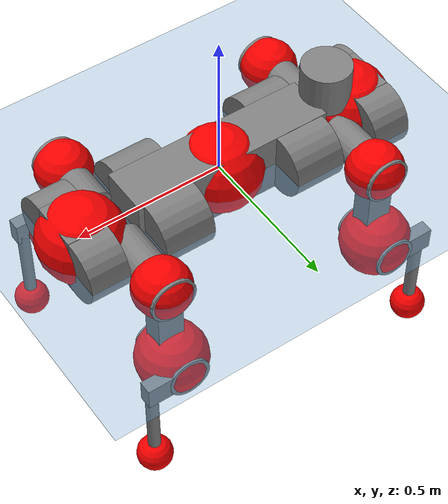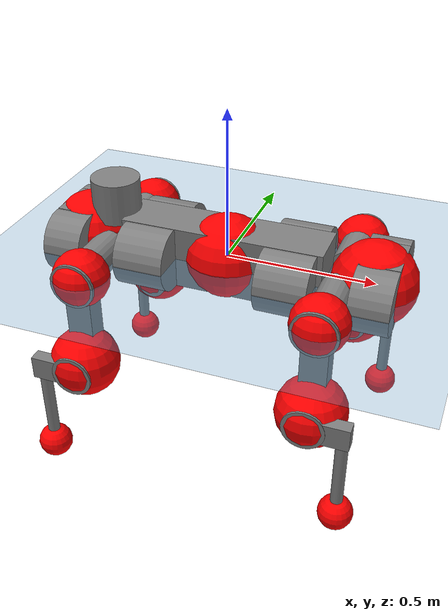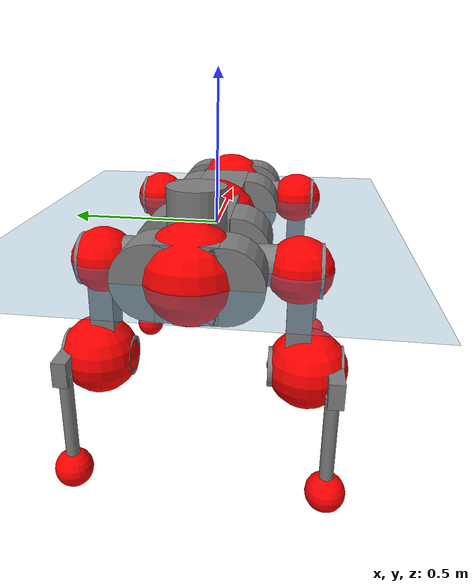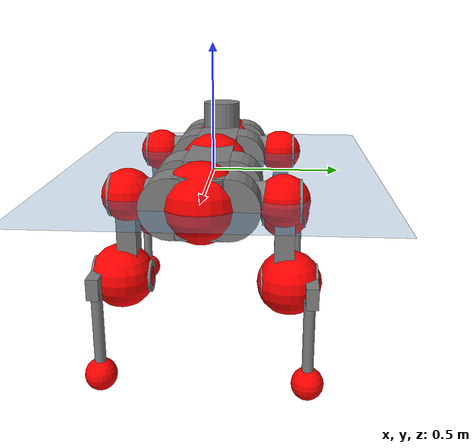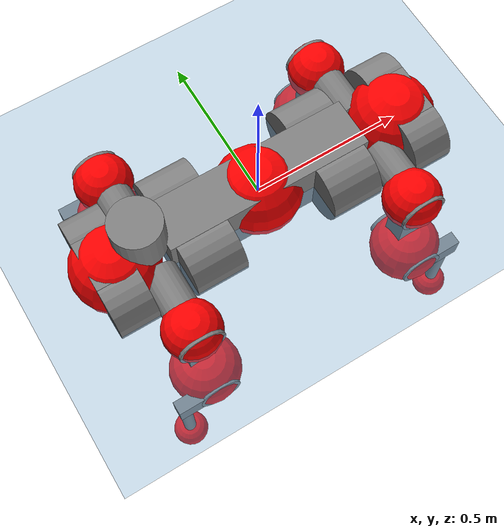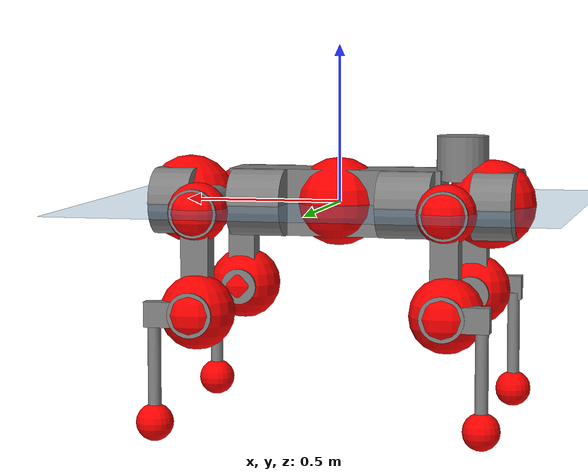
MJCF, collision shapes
<mujoco model="anymal_c">
  <compiler angle="radian" assetdir="assets" balanceinertia="true" inertiafromgeom="false"/>

  <option timestep="0.005" density="1.2" viscosity="2e-05"/>

  <size nkey="1"/>

  <visual>
    <quality shadowsize="8192"/>
    <map shadowclip="0.5"/>
  </visual>

  <default>
    <default class="/">
      <material specular="0" shininess="0.25"/>
      <geom contype="0" conaffinity="0" group="1" solref="-1000 -80"/>
      <site size="0.01 0.005 0.005" group="5"/>
      <general forcelimited="true" forcerange="-80 80" biastype="affine" gainprm="80" biasprm="0 -80 -2"/>
      <default class="anymal_c">
        <joint armature="0.01" damping="0.01" frictionloss="0.1"/>
        <default class="visual">
          <geom type="mesh" group="2"/>
          <default class="visual_zflip"/>
        </default>
        <default class="collision">
          <geom type="cylinder" group="3"/>
          <default class="foot">
            <geom size="0.03 0 0" type="sphere" condim="6" priority="1" friction="0.8 0.02 0.01" solimp="0.015 1 0.03"/>
          </default>
        </default>
      </default>
      <default class="reward_collision_sphere">
        <geom group="5" rgba="1 0 0 1"/>
      </default>
    </default>
  </default>

  <asset>
    <texture type="skybox" colorspace="auto" name="//unnamed_texture_0" builtin="gradient" rgb1="0.95 0.95 0.95" rgb2="0.95 0.95 0.95" width="100" height="600"/>
    <texture type="2d" colorspace="auto" name="texplane" builtin="checker" rgb1="0.345 0.575 0.748" rgb2="0.345 0.575 0.748" markrgb="1 1 1" width="512" height="512"/>
    <texture type="2d" colorspace="linear" name="base" file="base.png"/>
    <texture type="2d" colorspace="linear" name="top_shell" file="top_shell.png"/>
    <texture type="2d" colorspace="linear" name="bottom_shell" file="bottom_shell.png"/>
    <texture type="2d" colorspace="linear" name="remote" file="remote.png"/>
    <texture type="2d" colorspace="linear" name="hatch" file="hatch.png"/>
    <texture type="2d" colorspace="linear" name="handle" file="handle.png"/>
    <texture type="2d" colorspace="linear" name="face" file="face.png"/>
    <texture type="2d" colorspace="linear" name="battery" file="battery.png"/>
    <texture type="2d" colorspace="linear" name="lidar_cage" file="lidar_cage.png"/>
    <texture type="2d" colorspace="linear" name="depth_camera" file="depth_camera.png"/>
    <texture type="2d" colorspace="linear" name="wide_angle_camera" file="wide_angle_camera.png"/>
    <texture type="2d" colorspace="linear" name="lidar" file="lidar.png"/>
    <texture type="2d" colorspace="linear" name="drive" file="drive.png"/>
    <texture type="2d" colorspace="linear" name="hip_l" file="hip_l.png"/>
    <texture type="2d" colorspace="linear" name="shank_l" file="shank_l.png"/>
    <texture type="2d" colorspace="linear" name="foot" file="foot.png"/>
    <texture type="2d" colorspace="linear" name="thigh" file="thigh.png"/>
    <texture type="2d" colorspace="linear" name="shank_r" file="shank_r.png"/>
    <texture type="2d" colorspace="linear" name="hip_r" file="hip_r.png"/>
    <material name="MatPlane" class="/" texture="texplane" texuniform="true" texrepeat="2 2" specular="0.9" shininess="0.5"/>
    <material name="black_plastic" class="/" rgba="0.007 0.007 0.007 1"/>
    <material name="green" class="/" rgba="0.052 0.178 0.033 1"/>
    <material name="red" class="/" rgba="0.178 0.006 0.005 1"/>
    <material name="yellow" class="/" rgba="0.178 0.119 0.006 1"/>
    <material name="lwl" class="/" rgba="0.8 0.8 0.8 1"/>
    <material name="base" class="/" texture="base"/>
    <material name="top_shell" class="/" texture="top_shell"/>
    <material name="bottom_shell" class="/" texture="bottom_shell"/>
    <material name="hip_l" class="/" texture="hip_l"/>
    <material name="thigh" class="/" texture="thigh"/>
    <material name="shank_l" class="/" texture="shank_l"/>
    <material name="foot" class="/" texture="foot"/>
    <material name="hip_r" class="/" texture="hip_r"/>
    <material name="shank" class="/" texture="shank_r"/>
    <material name="hatch" class="/" texture="hatch"/>
    <material name="remote" class="/" texture="remote"/>
    <material name="handle" class="/" texture="handle"/>
    <material name="face" class="/" texture="face"/>
    <material name="depth_camera" class="/" texture="depth_camera"/>
    <material name="wide_angle_camera" class="/" texture="wide_angle_camera"/>
    <material name="battery" class="/" texture="battery"/>
    <material name="lidar_cage" class="/" texture="lidar_cage"/>
    <material name="lidar" class="/" texture="lidar"/>
    <material name="drive" class="/" texture="drive"/>
    <mesh name="base_0" class="/" file="base_0.obj"/>
    <mesh name="base_1" class="/" file="base_1.obj"/>
    <mesh name="base_2" class="/" file="base_2.obj"/>
    <mesh name="base_3" class="/" file="base_3.obj"/>
    <mesh name="base_4" class="/" file="base_4.obj"/>
    <mesh name="base_5" class="/" file="base_5.obj"/>
    <mesh name="top_shell" class="/" file="top_shell.obj"/>
    <mesh name="bottom_shell" class="/" file="bottom_shell.obj"/>
    <mesh name="remote" class="/" file="remote.obj"/>
    <mesh name="handle" class="/" file="handle.obj"/>
    <mesh name="face" class="/" file="face.obj"/>
    <mesh name="wide_angle_camera" class="/" file="wide_angle_camera.obj"/>
    <mesh name="depth_camera" class="/" file="depth_camera.obj"/>
    <mesh name="battery" class="/" file="battery.obj"/>
    <mesh name="lidar_cage" class="/" file="lidar_cage.obj"/>
    <mesh name="lidar" class="/" file="lidar.obj"/>
    <mesh name="drive" class="/" file="drive.obj"/>
    <mesh name="hip_l" class="/" file="hip_l.obj"/>
    <mesh name="thigh" class="/" file="thigh.obj"/>
    <mesh name="shank_l" class="/" file="shank_l.obj"/>
    <mesh name="foot" class="/" file="foot.obj"/>
    <mesh name="hip_r" class="/" file="hip_r.obj"/>
    <mesh name="hatch" class="/" file="hatch.obj"/>
    <mesh name="shank_r" class="/" file="shank_r.obj"/>
  </asset>

  <worldbody>
    <geom name="floor" class="/" size="100 100 0.125" type="plane" group="0" material="MatPlane"/>
    <light name="toplight_shadow" class="/" pos="0 0 5" dir="0.0990148 0.0990148 -0.990148" type="directional" ambient="0.04 0.04 0.04" diffuse="0.55 0.55 0.55" specular="0.12 0.12 0.12"/>
    <light name="toplight_fill" class="/" pos="0 0 5" dir="0.0990148 0.0990148 -0.990148" type="directional" castshadow="false" ambient="0.04 0.04 0.04" diffuse="0.3 0.3 0.3" specular="0.08 0.08 0.08"/>
    <body name="trunk" childclass="anymal_c" pos="0.000540918 0.0035917 0.00204004" quat="1 8.00715e-06 -4.95742e-06 3.56093e-06">
      <inertial pos="0.00402978 0.00430276 0.0496236" quat="0.52037 0.516264 0.471022 0.490739" mass="31.7695" diaginertia="1.00057 2.77491 0.317088"/>
      <joint name="//unnamed_joint_0" type="free" armature="0" damping="0" frictionloss="0"/>
      <geom name="//unnamed_geom_1" class="visual" material="green" mesh="base_0"/>
      <geom name="//unnamed_geom_2" class="visual" material="yellow" mesh="base_1"/>
      <geom name="//unnamed_geom_3" class="visual" material="red" mesh="base_2"/>
      <geom name="//unnamed_geom_4" class="visual" material="black_plastic" mesh="base_3"/>
      <geom name="//unnamed_geom_5" class="visual" material="lwl" mesh="base_4"/>
      <geom name="//unnamed_geom_6" class="visual" material="base" mesh="base_5"/>
      <geom name="trunk_1" class="collision" size="0.341105 0.0823357 0.10586" type="box"/>
      <geom name="trunk_2" class="collision" size="0.10586 0.0852763" pos="0.237775 0.0951048 0" quat="0.707107 0 0.707107 0"/>
      <geom name="trunk_3" class="collision" size="0.10586 0.0852763" pos="-0.237775 0.0951048 0" quat="0.707107 0 0.707107 0"/>
      <geom name="trunk_4" class="collision" size="0.10586 0.0852763" pos="0.237775 -0.0951048 0" quat="0.707107 0 0.707107 0"/>
      <geom name="trunk_5" class="collision" size="0.10586 0.0852763" pos="-0.237775 -0.0951048 0" quat="0.707107 0 0.707107 0"/>
      <geom name="//unnamed_geom_12" class="visual" material="top_shell" mesh="top_shell"/>
      <geom name="//unnamed_geom_13" class="visual" material="bottom_shell" mesh="bottom_shell"/>
      <geom name="//unnamed_geom_14" class="visual" material="remote" mesh="remote"/>
      <geom name="//unnamed_geom_15" class="visual" material="handle" mesh="handle"/>
      <geom name="//unnamed_geom_16" class="visual" pos="0.453138 0 0" quat="1 0 0 0" material="face" mesh="face"/>
      <geom name="trunk_6" class="collision" size="0.0646923 0.0823357 0.10586" pos="0.513265 0 0" type="box"/>
      <geom name="//unnamed_geom_18" class="collision" size="0.10586 0.0646923" pos="0.513265 0.0951048 0" quat="0.707107 0 0.707107 0"/>
      <geom name="//unnamed_geom_19" class="collision" size="0.10586 0.0646923" pos="0.513265 -0.0951048 0" quat="0.707107 0 0.707107 0"/>
      <geom name="//unnamed_geom_20" class="visual" pos="0.504683 0 -0.0313184" quat="0.965926 0 0.258819 0" material="depth_camera" mesh="depth_camera"/>
      <geom name="//unnamed_geom_21" class="visual" pos="0.56082 0 0.01612" material="wide_angle_camera" mesh="wide_angle_camera"/>
      <geom name="//unnamed_geom_22" class="visual_zflip" pos="-0.453138 0 0" quat="0 0 0 1" material="face" mesh="face"/>
      <geom name="trunk_7" class="collision" size="0.0646923 0.0823357 0.10586" pos="-0.513265 0 0" quat="0 0 0 1" type="box"/>
      <geom name="//unnamed_geom_24" class="collision" size="0.10586 0.0646923" pos="-0.513265 -0.0951048 0" quat="0 -0.707107 0 0.707107"/>
      <geom name="//unnamed_geom_25" class="collision" size="0.10586 0.0646923" pos="-0.513265 0.0951048 0" quat="0 -0.707107 0 0.707107"/>
      <geom name="//unnamed_geom_26" class="visual" pos="-0.504683 0 -0.0313184" quat="0 -0.258819 0 0.965926" material="depth_camera" mesh="depth_camera"/>
      <geom name="//unnamed_geom_27" class="visual_zflip" pos="-0.56082 0 0.01612" quat="0 0 0 1" material="wide_angle_camera" mesh="wide_angle_camera"/>
      <geom name="//unnamed_geom_28" class="visual" material="battery" mesh="battery"/>
      <geom name="//unnamed_geom_29" class="visual" pos="0 0.107364 0.0314062" quat="0.683013 -0.183013 0.183013 0.683013" material="depth_camera" mesh="depth_camera"/>
      <geom name="//unnamed_geom_30" class="visual" pos="0 -0.107364 0.0314062" quat="0.683013 0.183013 0.183013 -0.683013" material="depth_camera" mesh="depth_camera"/>
      <geom name="//unnamed_geom_31" class="visual" pos="-0.397931 0 0.0791461" quat="1 0 0 0" material="lidar_cage" mesh="lidar_cage"/>
      <geom name="trunk_8" class="collision" size="0.0823357 0.0705735" pos="-0.397931 0 0.143755"/>
      <geom name="//unnamed_geom_33" class="visual" pos="-0.397931 0.000104278 0.153123" quat="0.707107 0 0 -0.707107" material="lidar" mesh="lidar"/>
      <geom name="//unnamed_geom_34" class="visual" pos="0.327856 0.141198 4.86146e-09" quat="0.258819 0.965926 0 0" material="drive" mesh="drive"/>
      <geom name="//unnamed_geom_35" class="visual" pos="0.327856 -0.141198 -4.86146e-09" quat="0.258819 -0.965926 0 0" material="drive" mesh="drive"/>
      <geom name="//unnamed_geom_36" class="visual" pos="-0.327856 0.141198 -4.86146e-09" quat="0 0 0.965926 -0.258819" material="drive" mesh="drive"/>
      <geom name="//unnamed_geom_37" class="visual" pos="-0.327856 -0.141198 4.86146e-09" quat="0 0 -0.965926 -0.258819" material="drive" mesh="drive"/>
      <geom name="//unnamed_geom_38" class="visual" pos="0.126813 0 0.0786077" quat="1 0 0 0" material="hatch" mesh="hatch"/>
      <geom name="//unnamed_geom_39" class="reward_collision_sphere" size="0.141147"/>
      <geom name="//unnamed_geom_40" class="reward_collision_sphere" size="0.141147" pos="0.491947 0 0"/>
      <geom name="//unnamed_geom_41" class="reward_collision_sphere" size="0.141147" pos="-0.491947 0 0"/>
      <site name="imu" pos="0.255586 0.0055736 0.0677187" size="0.0117622"/>
      <camera name="track" pos="0 -2.71728 0" quat="0.707107 0.707107 0 0" mode="trackcom"/>
      <camera name="ego_camera" pos="0.491947 0 -0.0430727" quat="-0.5 -0.5 0.5 0.5"/>
      <body name="LF_HIP" pos="0.325777 0.133703 -0.00562444" quat="0.257342 0.96632 -0.00112851 0.000529286">
        <inertial pos="0.0598332 -0.0206802 -0.00929734" quat="-0.121376 0.71556 -0.138295 0.673881" mass="4.67112" diaginertia="0.00914542 0.0244214 0.00467661"/>
        <joint name="LF_HAA" pos="0 0 0" axis="0.999999 0.000785814 -0.00130434" range="-0.877899 0.474667" armature="0.0109896" damping="0.0249172" frictionloss="0.104122"/>
        <geom name="//unnamed_geom_42" class="visual" pos="0 0.000285978 -4.69716e-05" quat="0.258819 -0.965926 0 0" material="hip_l" mesh="hip_l"/>
        <geom name="//unnamed_geom_43" class="visual" pos="0.0654837 -0.082742 -0.0456866" quat="0.183013 -0.683013 0.683013 0.183013" material="drive" mesh="drive"/>
        <geom name="//unnamed_geom_44" class="collision" size="0.0588112 0.0823357" pos="0.0654837 -0.0162491 -0.00743542" quat="-0.353553 -0.612372 0.612372 -0.353553"/>
        <body name="LF_THIGH" pos="0.0654119 -0.106339 -0.046368" quat="0.184351 -0.683025 0.682716 0.182728">
          <inertial pos="0.0309703 -0.00146448 -0.262382" quat="0.991257 -0.0249238 -0.0846582 0.0980879" mass="4.99239" diaginertia="0.0493031 0.139999 0.00605288"/>
          <joint name="LF_HFE" pos="0 0 0" axis="0.999818 -0.012582 -0.0143436" stiffness="0.0194712" range="-3.14578 3.01882" armature="0.00931105" damping="0.0243313" frictionloss="0.122296"/>
          <geom name="//unnamed_geom_45" class="visual" pos="-0.00528087 -8.32142e-06 0" quat="0.707107 0 0 -0.707107" material="thigh" mesh="thigh"/>
          <geom name="//unnamed_geom_46" class="collision" size="0.0764546 0.047049" pos="0.0437287 0 0" quat="0.5 0.5 -0.5 -0.5"/>
          <geom name="//unnamed_geom_47" class="collision" size="0.0441084 0.0352867 0.166217" pos="0.0327965 0 -0.152169" quat="0.707107 0 0 -0.707107" type="box"/>
          <geom name="//unnamed_geom_48" class="visual" pos="0.10965 0 -0.306893" quat="1 0 0 0" material="drive" mesh="drive"/>
          <geom name="//unnamed_geom_49" class="collision" size="0.0588112 0.0823357" pos="0.0331245 0 -0.306893" quat="0.707107 0 0.707107 0"/>
          <geom name="//unnamed_geom_50" class="reward_collision_sphere" size="0.094098" pos="0.0273304 0 0"/>
          <body name="LF_SHANK" pos="0.108276 0.00586363 -0.307949" quat="1 0.000286722 -1.36588e-05 -0.000238506">
            <inertial pos="0.00392925 -0.0828689 -0.0796897" quat="0.993172 -0.113533 -8.2241e-05 -0.0268338" mass="0.92527" diaginertia="0.016445 0.0390923 0.00174672"/>
            <joint name="LF_KFE" pos="0 0 0" axis="0.999967 0.00624506 -0.00524217" range="-3.00095 3.13742" armature="0.0128588" damping="0.0117811" frictionloss="0.12167"/>
            <geom name="//unnamed_geom_51" class="visual" pos="-0.00172198 -0.00918167 0" quat="0.707107 0 0 -0.707107" material="shank_l" mesh="shank_l"/>
            <geom name="LF_kfe_act" class="collision" size="0.0705735 0.0235245" pos="0.0218643 0 0" quat="0.5 0.5 -0.5 -0.5"/>
            <geom name="//unnamed_geom_53" class="collision" size="0.0676317 0.0396976 0.0223483" pos="0.0218643 -0.0781204 0" quat="0.5 0.5 -0.5 -0.5" type="box"/>
            <geom name="//unnamed_geom_54" class="visual" pos="0.0142669 -0.122451 -0.363932" quat="0.382683 0 0 -0.92388" material="foot" mesh="foot"/>
            <geom name="LF_calf" class="collision" size="0.0205839 0.166144" pos="0.0142665 -0.119492 -0.181966" quat="0.707107 0 0 -0.707107"/>
            <geom name="LF_foot" class="foot" size="0.0303617" pos="0.0142665 -0.119492 -0.339704" quat="0.707107 0 0 -0.707107"/>
            <geom name="//unnamed_geom_57" class="reward_collision_sphere" size="0.117622" pos="-0.0546608 0 0"/>
            <geom name="//unnamed_geom_58" class="reward_collision_sphere" size="0.0588112" pos="0.0142665 -0.119492 -0.339704"/>
            <site name="LF_foot" class="foot" pos="0.0142665 -0.119492 -0.339704" quat="0.707107 0 0 -0.707107" size="0.0117622"/>
          </body>
        </body>
      </body>
      <body name="RF_HIP" pos="0.329844 -0.140357 -0.000439281" quat="0.258796 -0.965932 8.34453e-05 0.000279209">
        <inertial pos="0.0611546 0.0231018 -0.0069489" quat="0.128846 0.676204 0.13076 0.713477" mass="4.92625" diaginertia="0.00920603 0.0256593 0.00464001"/>
        <joint name="RF_HAA" pos="0 0 0" axis="0.999947 -0.00756166 -0.00695742" range="-0.480648 0.708545" armature="0.0126442" damping="0.0182273" frictionloss="0.123542"/>
        <geom name="//unnamed_geom_59" class="visual" pos="0 -0.000285976 -4.69715e-05" quat="0.258819 0.965926 0 0" material="hip_r" mesh="hip_r"/>
        <geom name="//unnamed_geom_60" class="visual" pos="0.0654837 0.082742 -0.0456866" quat="0.183013 0.683013 0.683013 -0.183013" material="drive" mesh="drive"/>
        <geom name="//unnamed_geom_61" class="collision" size="0.0588112 0.0823357" pos="0.0654837 0.0162491 -0.00743542" quat="-0.353553 0.612372 0.612372 0.353553"/>
        <body name="RF_THIGH" pos="0.0595658 0.0909009 -0.0461836" quat="0.18299 0.683004 0.683025 -0.183022">
          <inertial pos="0.034129 0.0075026 -0.265889" quat="0.992943 -0.000383504 -0.0754042 0.0915286" mass="4.56242" diaginertia="0.0457502 0.130877 0.00568068"/>
          <joint name="RF_HFE" pos="0 0 0" axis="0.999939 0.00818161 0.00736112" range="-3.01537 3.13155" armature="0.0130595" damping="0.0200039" frictionloss="0.116631"/>
          <geom name="//unnamed_geom_62" class="visual" pos="-0.00528087 -8.32142e-06 0" quat="0.707107 0 0 -0.707107" material="thigh" mesh="thigh"/>
          <geom name="//unnamed_geom_63" class="collision" size="0.0764546 0.047049" pos="0.0437287 0 0" quat="0.5 0.5 0.5 0.5"/>
          <geom name="//unnamed_geom_64" class="collision" size="0.0441084 0.0352867 0.166217" pos="0.0327965 0 -0.152169" quat="0.707107 0 0 0.707107" type="box"/>
          <geom name="//unnamed_geom_65" class="visual" pos="0.10965 0 -0.306893" quat="1 0 0 0" material="drive" mesh="drive"/>
          <geom name="//unnamed_geom_66" class="collision" size="0.0588112 0.0823357" pos="0.0331245 0 -0.306893" quat="0.707107 0 0.707107 0"/>
          <geom name="//unnamed_geom_67" class="reward_collision_sphere" size="0.094098" pos="0.0273304 0 0"/>
          <body name="RF_SHANK" pos="0.115879 0.00310792 -0.305186" quat="0.999997 0.00191432 0.000363086 0.00144155">
            <inertial pos="0.0068154 0.082457 -0.0892922" quat="0.992482 0.118933 0.00617101 0.0282249" mass="0.986019" diaginertia="0.0163419 0.0425694 0.00165423"/>
            <joint name="RF_KFE" pos="0 0 0" axis="0.999368 0.0225212 0.0274906" range="-3.08524 3.12938" armature="0.00843515" damping="0" frictionloss="0.145392"/>
            <geom name="//unnamed_geom_68" class="visual" pos="-0.00172197 0.00918165 0" quat="0.707107 0 0 0.707107" material="shank" mesh="shank_r"/>
            <geom name="RF_kfe_act" class="collision" size="0.0705735 0.0235245" pos="0.0218643 0 0" quat="0.5 0.5 0.5 0.5"/>
            <geom name="//unnamed_geom_70" class="collision" size="0.0676317 0.0396976 0.0223483" pos="0.0218643 0.0781204 0" quat="0.5 0.5 0.5 0.5" type="box"/>
            <geom name="//unnamed_geom_71" class="visual" pos="0.0142661 0.122451 -0.363932" quat="0.382683 0 0 0.92388" material="foot" mesh="foot"/>
            <geom name="RF_calf" class="collision" size="0.0205839 0.166144" pos="0.0142665 0.119492 -0.181966" quat="0.707107 0 0 0.707107"/>
            <geom name="RF_foot" class="foot" size="0.03237" pos="0.0142665 0.119492 -0.339704" quat="0.707107 0 0 0.707107"/>
            <geom name="//unnamed_geom_74" class="reward_collision_sphere" size="0.117622" pos="-0.0546608 0 0"/>
            <geom name="//unnamed_geom_75" class="reward_collision_sphere" size="0.0588112" pos="0.0142665 0.119492 -0.339704"/>
            <site name="RF_foot" class="foot" pos="0.0142665 0.119492 -0.339704" quat="0.707107 0 0 0.707107" size="0.0117622"/>
          </body>
        </body>
      </body>
      <body name="LH_HIP" pos="-0.324393 0.140284 0.00432179" quat="0.000451733 -5.61448e-05 0.96581 -0.259251">
        <inertial pos="0.061963 0.0250064 -0.00986924" quat="0.128773 0.679571 0.131996 0.710054" mass="4.62859" diaginertia="0.00910293 0.0229223 0.00480462"/>
        <joint name="LH_HAA" pos="0 0 0" axis="0.999973 -0.0041124 0.00612414" range="-0.454299 0.713053" armature="0.0112405" damping="0.0203678" frictionloss="0.130394"/>
        <geom name="//unnamed_geom_76" class="visual" pos="0 -0.000285976 -4.69715e-05" quat="-0.258819 -0.965926 0 0" material="hip_r" mesh="hip_r"/>
        <geom name="//unnamed_geom_77" class="visual" pos="0.0654837 0.082742 -0.0456866" quat="0.183013 0.683013 0.683013 -0.183013" material="drive" mesh="drive"/>
        <geom name="//unnamed_geom_78" class="collision" size="0.0588112 0.0823357" pos="0.0654837 0.0162491 -0.00743542" quat="-0.353553 0.612372 0.612372 0.353553"/>
        <body name="LH_THIGH" pos="0.0671104 0.0956398 -0.038589" quat="0.184036 0.68329 0.682462 -0.183005">
          <inertial pos="0.0334223 -0.00239998 -0.258086" quat="0.992861 -0.0114793 -0.0799884 0.0877351" mass="4.55468" diaginertia="0.0466546 0.140323 0.00596063"/>
          <joint name="LH_HFE" pos="0 0 0" axis="0.999996 -0.00212473 -0.00205727" range="-3.06901 3.10553" armature="0.0113855" damping="0.0297929" frictionloss="0.105358"/>
          <geom name="//unnamed_geom_79" class="visual" pos="-0.00528087 -8.32142e-06 0" quat="0.707107 0 0 -0.707107" material="thigh" mesh="thigh"/>
          <geom name="//unnamed_geom_80" class="collision" size="0.0764546 0.047049" pos="0.0437287 0 0" quat="0.5 0.5 -0.5 -0.5"/>
          <geom name="//unnamed_geom_81" class="collision" size="0.0441084 0.0352867 0.166217" pos="0.0327965 0 -0.152169" quat="0.707107 0 0 -0.707107" type="box"/>
          <geom name="//unnamed_geom_82" class="visual" pos="0.10965 0 -0.306893" quat="1 0 0 0" material="drive" mesh="drive"/>
          <geom name="//unnamed_geom_83" class="collision" size="0.0588112 0.0823357" pos="0.0331245 0 -0.306893" quat="0.707107 0 0.707107 0"/>
          <geom name="//unnamed_geom_84" class="reward_collision_sphere" size="0.094098" pos="0.0273304 0 0"/>
          <body name="LH_SHANK" pos="0.111241 0.00774025 -0.304122" quat="0.999999 -0.000111591 0.000724519 0.000744572">
            <inertial pos="0.00396801 0.0832435 -0.0893048" quat="0.993188 0.112007 -0.00169897 0.0320725" mass="0.919945" diaginertia="0.0145966 0.0411036 0.00157758"/>
            <joint name="LH_KFE" pos="0 0 0" axis="0.999929 -0.00926509 0.00745524" range="-3.28565 3.20779" armature="0.0122184" damping="0.0108619" frictionloss="0.115022"/>
            <geom name="//unnamed_geom_85" class="visual" pos="-0.00172197 0.00918165 0" quat="-0.707107 0 0 -0.707107" material="shank" mesh="shank_r"/>
            <geom name="LH_kfe_act" class="collision" size="0.0705735 0.0235245" pos="0.0218643 0 0" quat="0.5 0.5 -0.5 -0.5"/>
            <geom name="//unnamed_geom_87" class="collision" size="0.0676317 0.0396976 0.0223483" pos="0.0218643 0.0781204 0" quat="0.5 0.5 -0.5 -0.5" type="box"/>
            <geom name="//unnamed_geom_88" class="visual" pos="0.0142661 0.122451 -0.363932" quat="-0.382683 0 0 -0.92388" material="foot" mesh="foot"/>
            <geom name="LH_calf" class="collision" size="0.0205839 0.166144" pos="0.0142665 0.119492 -0.181966" quat="0.707107 0 0 -0.707107"/>
            <geom name="LH_foot" class="foot" size="0.0366199" pos="0.0142665 0.119492 -0.339704" quat="0.707107 0 0 -0.707107"/>
            <geom name="//unnamed_geom_91" class="reward_collision_sphere" size="0.117622" pos="-0.0546608 0 0"/>
            <geom name="//unnamed_geom_92" class="reward_collision_sphere" size="0.0588112" pos="0.0142665 0.119492 -0.339704"/>
            <site name="LH_foot" class="foot" pos="0.0142665 0.119492 -0.339704" quat="0.707107 0 0 -0.707107" size="0.0117622"/>
          </body>
        </body>
      </body>
      <body name="RH_HIP" pos="-0.326354 -0.145183 -0.00090719" quat="0.00120968 -0.000525032 -0.966414 -0.256987">
        <inertial pos="0.0636562 -0.0254496 -0.00684259" quat="-0.122156 0.709851 -0.142542 0.678875" mass="4.53288" diaginertia="0.00863292 0.0226429 0.00434338"/>
        <joint name="RH_HAA" pos="0 0 0" axis="0.999664 0.018684 -0.0179507" range="-0.76936 0.607991" armature="0.0118318" damping="0.00592223" frictionloss="0.130336"/>
        <geom name="//unnamed_geom_93" class="visual" pos="0 0.000285978 -4.69716e-05" quat="-0.258819 0.965926 0 0" material="hip_l" mesh="hip_l"/>
        <geom name="//unnamed_geom_94" class="visual" pos="0.0654837 -0.082742 -0.0456866" quat="-0.183013 0.683013 -0.683013 -0.183013" material="drive" mesh="drive"/>
        <geom name="//unnamed_geom_95" class="collision" size="0.0588112 0.0823357" pos="0.0654837 -0.0162491 -0.00743542" quat="0.353553 0.612372 -0.612372 0.353553"/>
        <body name="RH_THIGH" pos="0.0665924 -0.101603 -0.0456507" quat="-0.185694 0.682493 -0.682973 -0.182396">
          <inertial pos="0.0336319 0.00571027 -0.266" quat="0.993353 0.00405691 -0.0765424 0.085877" mass="5.17774" diaginertia="0.0493081 0.142918 0.00615957"/>
          <joint name="RH_HFE" pos="0 0 0" axis="0.999556 0.0294605 -0.00435931" range="-3.09355 3.1197" armature="0.0109091" damping="0.0110633" frictionloss="0.130662"/>
          <geom name="//unnamed_geom_96" class="visual" pos="-0.00528087 -8.32142e-06 0" quat="0.707107 0 0 -0.707107" material="thigh" mesh="thigh"/>
          <geom name="//unnamed_geom_97" class="collision" size="0.0764546 0.047049" pos="0.0437287 0 0" quat="0.5 0.5 0.5 0.5"/>
          <geom name="//unnamed_geom_98" class="collision" size="0.0441084 0.0352867 0.166217" pos="0.0327965 0 -0.152169" quat="0.707107 0 0 0.707107" type="box"/>
          <geom name="//unnamed_geom_99" class="visual" pos="0.10965 0 -0.306893" quat="1 0 0 0" material="drive" mesh="drive"/>
          <geom name="//unnamed_geom_100" class="collision" size="0.0588112 0.0823357" pos="0.0331245 0 -0.306893" quat="0.707107 0 0.707107 0"/>
          <geom name="//unnamed_geom_101" class="reward_collision_sphere" size="0.094098" pos="0.0273304 0 0"/>
          <body name="RH_SHANK" pos="0.118301 0.00273174 -0.304363" quat="1 -1.95439e-05 -6.2992e-06 -1.55904e-05">
            <inertial pos="-0.0019557 -0.0835789 -0.088418" quat="0.99334 -0.112537 -0.000635898 -0.0247072" mass="0.938619" diaginertia="0.0147609 0.04206 0.00166692"/>
            <joint name="RH_KFE" pos="0 0 0" axis="0.999529 0.0235994 0.0196094" stiffness="0.00305441" range="-3.04778 3.0184" armature="0.0151793" damping="0.0106973" frictionloss="0.118126"/>
            <geom name="//unnamed_geom_102" class="visual" pos="-0.00172198 -0.00918167 0" quat="0.707107 0 0 -0.707107" material="shank_l" mesh="shank_l"/>
            <geom name="RH_kfe_act" class="collision" size="0.0705735 0.0235245" pos="0.0218643 0 0" quat="0.5 0.5 0.5 0.5"/>
            <geom name="//unnamed_geom_104" class="collision" size="0.0676317 0.0396976 0.0223483" pos="0.0218643 -0.0781204 0" quat="0.5 0.5 0.5 0.5" type="box"/>
            <geom name="//unnamed_geom_105" class="visual" pos="0.0142669 -0.122451 -0.363932" quat="0.382683 0 0 -0.92388" material="foot" mesh="foot"/>
            <geom name="RH_calf" class="collision" size="0.0205839 0.166144" pos="0.0142665 -0.119492 -0.181966" quat="0.707107 0 0 0.707107"/>
            <geom name="RH_foot" class="foot" size="0.0355869" pos="0.0142665 -0.119492 -0.339704" quat="0.707107 0 0 0.707107"/>
            <geom name="//unnamed_geom_108" class="reward_collision_sphere" size="0.117622" pos="-0.0546608 0 0"/>
            <geom name="//unnamed_geom_109" class="reward_collision_sphere" size="0.0588112" pos="0.0142665 -0.119492 -0.339704"/>
            <site name="RH_foot" class="foot" pos="0.0142665 -0.119492 -0.339704" quat="0.707107 0 0 0.707107" size="0.0117622"/>
          </body>
        </body>
      </body>
    </body>
  </worldbody>

  <contact>
    <pair class="/" geom1="floor" geom2="LF_foot" name="//unnamed_contact_0"/>
    <pair class="/" geom1="floor" geom2="RF_foot" name="//unnamed_contact_1"/>
    <pair class="/" geom1="floor" geom2="LH_foot" name="//unnamed_contact_2"/>
    <pair class="/" geom1="floor" geom2="RH_foot" name="//unnamed_contact_3"/>
  </contact>

  <actuator>
    <general name="LF_HAA" class="/" joint="LF_HAA" forcerange="-66.5098 66.5098" gainprm="80.0272" biasprm="0 -80.0272 -2.4046"/>
    <general name="LF_HFE" class="/" joint="LF_HFE" forcerange="-101.909 101.909" gainprm="80.0272" biasprm="0 -80.0272 -2.4046"/>
    <general name="LF_KFE" class="/" joint="LF_KFE" forcerange="-88.8771 88.8771" gainprm="80.0272" biasprm="0 -80.0272 -2.4046"/>
    <general name="RF_HAA" class="/" joint="RF_HAA" forcerange="-72.4692 72.4692" gainprm="80.0272" biasprm="0 -80.0272 -2.4046"/>
    <general name="RF_HFE" class="/" joint="RF_HFE" forcerange="-72.5751 72.5751" gainprm="80.0272" biasprm="0 -80.0272 -2.4046"/>
    <general name="RF_KFE" class="/" joint="RF_KFE" forcerange="-86.4068 86.4068" gainprm="80.0272" biasprm="0 -80.0272 -2.4046"/>
    <general name="LH_HAA" class="/" joint="LH_HAA" forcerange="-88.6251 88.6251" gainprm="80.0272" biasprm="0 -80.0272 -2.4046"/>
    <general name="LH_HFE" class="/" joint="LH_HFE" forcerange="-104.4 104.4" gainprm="80.0272" biasprm="0 -80.0272 -2.4046"/>
    <general name="LH_KFE" class="/" joint="LH_KFE" forcerange="-98.842 98.842" gainprm="80.0272" biasprm="0 -80.0272 -2.4046"/>
    <general name="RH_HAA" class="/" joint="RH_HAA" forcerange="-118.537 118.537" gainprm="80.0272" biasprm="0 -80.0272 -2.4046"/>
    <general name="RH_HFE" class="/" joint="RH_HFE" forcerange="-87.4907 87.4907" gainprm="80.0272" biasprm="0 -80.0272 -2.4046"/>
    <general name="RH_KFE" class="/" joint="RH_KFE" forcerange="-94.1104 94.1104" gainprm="80.0272" biasprm="0 -80.0272 -2.4046"/>
  </actuator>

  <sensor>
    <gyro site="imu" name="imu_angular_velocity"/>
    <velocimeter site="imu" name="imu_linear_velocity"/>
    <framelinvel objtype="site" objname="LF_foot" name="LF_foot_global_linear_velocity"/>
    <framelinvel objtype="site" objname="RF_foot" name="RF_foot_global_linear_velocity"/>
    <framelinvel objtype="site" objname="LH_foot" name="LH_foot_global_linear_velocity"/>
    <framelinvel objtype="site" objname="RH_foot" name="RH_foot_global_linear_velocity"/>
  </sensor>

  <keyframe>
    <key name="home" qpos="0 0 0.55 1 0 0 0 0 0.4 -0.8 0 -0.4 0.8 0 -0.4 0.8 0 0.4 -0.8"/>
  </keyframe>
</mujoco>
